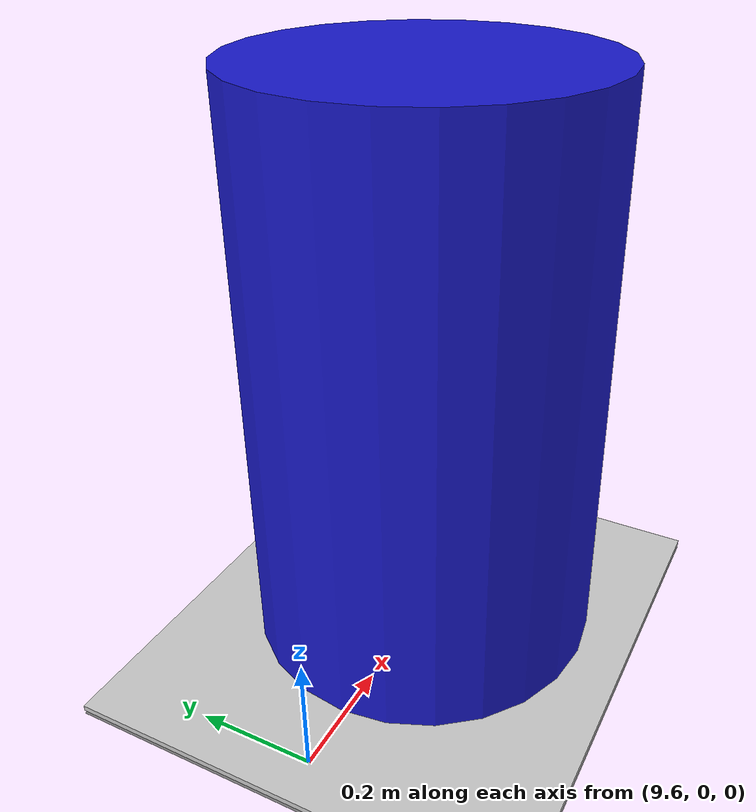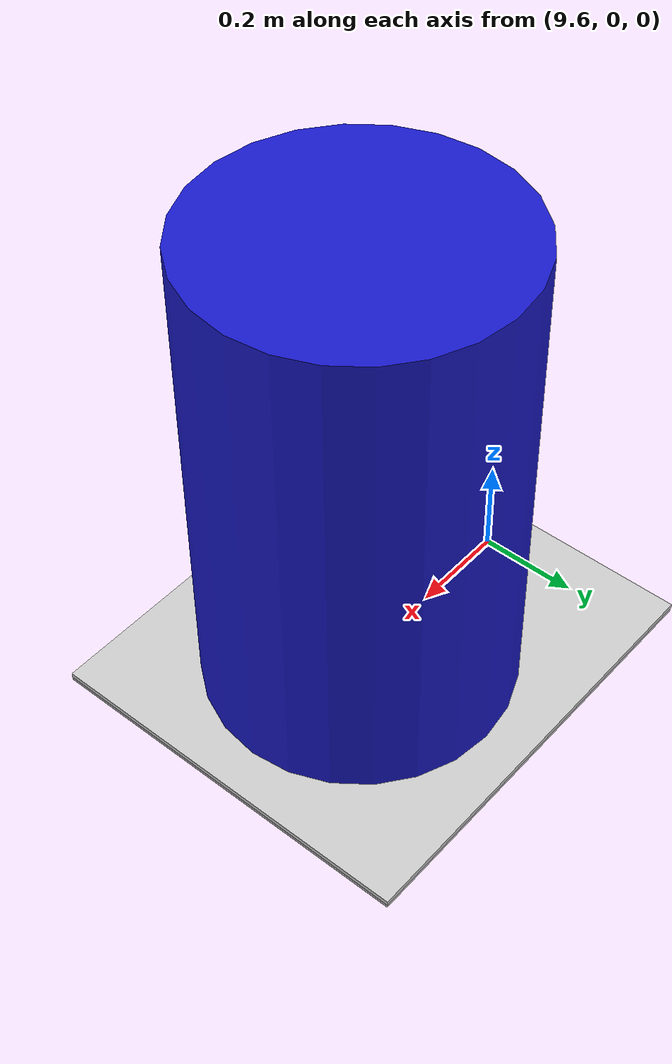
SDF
<?xml version="1.0"?>
<sdf version="1.9">
  <world name="aria_world">
    <!-- Plugins système requis par Gazebo Harmonic (gz-sim) -->
    <plugin filename="gz-sim-physics-system" name="gz::sim::systems::Physics"/>
    <plugin filename="gz-sim-sensors-system" name="gz::sim::systems::Sensors">
      <render_engine>ogre2</render_engine>
    </plugin>
    <plugin filename="gz-sim-scene-broadcaster-system" name="gz::sim::systems::SceneBroadcaster"/>
    <plugin filename="gz-sim-user-commands-system" name="gz::sim::systems::UserCommands"/>

    <!-- Lumière du soleil -->
    <light type="directional" name="sun">
      <cast_shadows>true</cast_shadows>
      <pose>0 0 10 0 0 0</pose>
      <diffuse>0.8 0.8 0.8 1</diffuse>
      <specular>0.2 0.2 0.2 1</specular>
      <attenuation>
        <range>1000</range>
        <constant>0.9</constant>
        <linear>0.01</linear>
        <quadratic>0.001</quadratic>
      </attenuation>
      <direction>-0.5 0.1 -0.9</direction>
    </light>

    <!-- Sol (ground plane) -->
    <model name="ground_plane">
      <static>true</static>
      <link name="link">
        <collision name="collision">
          <geometry><plane><normal>0 0 1</normal><size>100 100</size></plane></geometry>
        </collision>
        <visual name="visual">
          <geometry><plane><normal>0 0 1</normal><size>100 100</size></plane></geometry>
          <material><ambient>0.5 0.5 0.5 1</ambient><diffuse>0.5 0.5 0.5 1</diffuse></material>
        </visual>
      </link>
    </model>

    <!-- Physique de la simulation -->
    <physics name="default_physics" type="ode">
      <max_step_size>0.001</max_step_size>
      <real_time_factor>1</real_time_factor>
      <real_time_update_rate>1000</real_time_update_rate>
    </physics>

    <!-- Zone Nord: Marqueur visuel au sol -->
    <!-- Positionnée à x=10, y=0 selon le code de mission_manager_node.py -->
    <model name="zone_nord">
      <static>true</static>
      <pose>10 0 0.01 0 0 0</pose>
      <link name="link">
        <visual name="visual">
          <geometry><box><size>4 4 0.01</size></box></geometry>
          <material><ambient>0.8 0.8 0.8 1</ambient></material>
        </visual>
      </link>
    </model>

    <!-- Cible: Baril Bleu -->
    <!-- Un cylindre de couleur bleue placé dans la zone nord -->
    <model name="baril_bleu">
      <static>true</static>
      <pose>10 0 0.5 0 0 0</pose>
      <link name="link">
        <collision name="collision">
          <geometry><cylinder><radius>0.3</radius><length>1.0</length></cylinder></geometry>
        </collision>
        <visual name="visual">
          <geometry><cylinder><radius>0.3</radius><length>1.0</length></cylinder></geometry>
          <!-- Couleur bleue pour la vision RGB -->
          <material>
            <ambient>0.1 0.1 0.8 1</ambient>
            <diffuse>0.1 0.1 0.8 1</diffuse>
          </material>
        </visual>
      </link>
    </model>

  </world>
</sdf>
